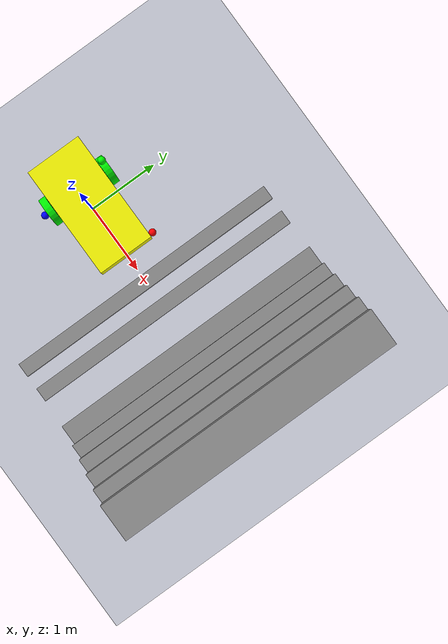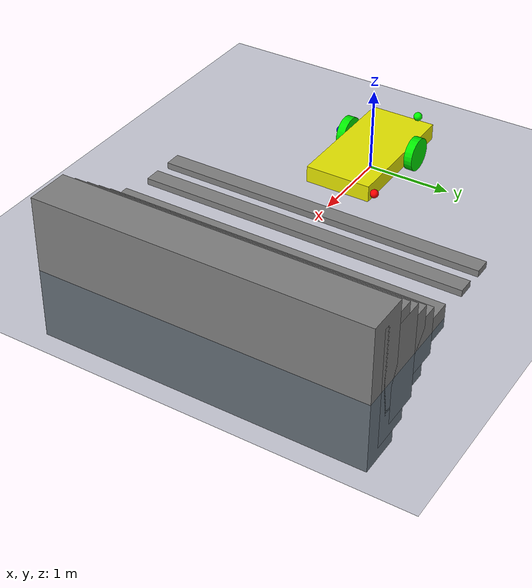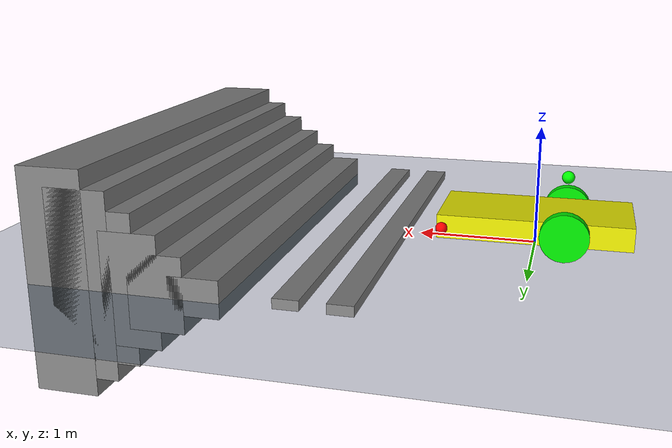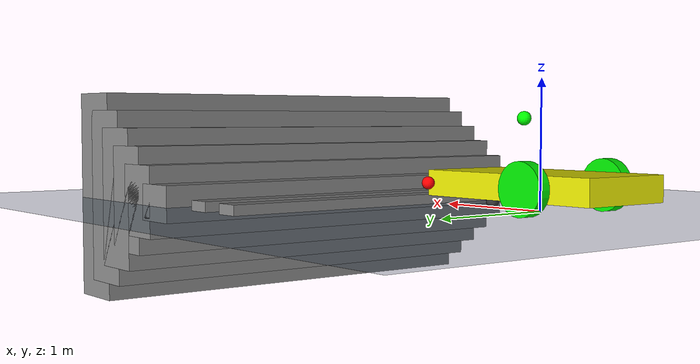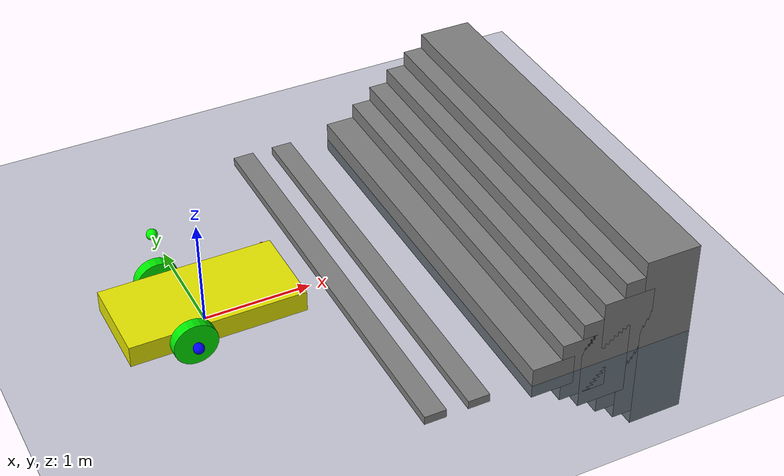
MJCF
<mujoco model="go2 scene">
  <include file="2wheel_robot.xml"/>

  <statistic center="0 0 0.1" extent="0.8"/>

  <visual>
    <headlight diffuse="0.6 0.6 0.6" ambient="0.3 0.3 0.3" specular="0 0 0"/>
    <rgba haze="0.15 0.25 0.35 1"/>
    <global azimuth="-130" elevation="-20"/>
  </visual>

  <asset>
    <texture type="skybox" builtin="gradient" rgb1="0.3 0.5 0.7" rgb2="0 0 0" width="512" height="3072"/>
    <texture type="2d" name="groundplane" builtin="checker" mark="edge" rgb1="0.2 0.3 0.4" rgb2="0.1 0.2 0.3"
      markrgb="0.8 0.8 0.8" width="300" height="300"/>
    <material name="groundplane" texture="groundplane" texuniform="true" texrepeat="5 5" reflectance="0.2"/>
  </asset>

  <worldbody>
    <light pos="0 0 1.5" dir="0 0 -1" directional="true"/>
    <geom name="floor" size="0 0 0.05" type="plane" material="groundplane"  friction="2 1.0 1.0"/>

    <geom pos="1.2 0 0.04" type="box"  size="0.1 2 0.04" quat="1.0 0 0 0"/>
    <geom pos="1.6 0 0.04" type="box"  size="0.1 2 0.04" quat="1.0 0 0 0"/>

    <geom pos="2.3 0 0.02" type="box"  size="0.2 2 0.15" quat="1.0 0 0 0"/>
    <geom pos="2.6 0 0.02" type="box"  size="0.22 2 0.3" quat="1.0 0 0 0"/>
    <geom pos="2.8 0 0.02" type="box"  size="0.23 2 0.45" quat="1.0 0 0 0"/>
    <geom pos="3 0 0.02" type="box"  size="0.24 2 0.6" quat="1.0 0 0 0"/>
    <geom pos="3.2 0 0.02" type="box"  size="0.25 2 0.75" quat="1.0 0 0 0"/>
    <geom pos="3.4 0 0.02" type="box"  size="0.26 2 0.9" quat="1.0 0 0 0"/>
  </worldbody>
</mujoco>

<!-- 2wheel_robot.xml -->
<mujoco>
    <option gravity="0 0 -9.81" />
    <visual>
        <headlight diffuse="0.6 0.6 0.6" ambient="0.3 0.3 0.3" specular="0 0 0"/>
        <rgba haze="0.15 0.25 0.35 1"/>
        <global azimuth="-130" elevation="-20"/>
    </visual>
    <worldbody>
        <light diffuse=".5 .5 .5" pos="0 0 3" dir="0 0 -1"/>
        <body name="chassis" pos="0 0 0.2">
            <joint type="free"/>
            <inertial pos="0 0 0" mass="1.0" diaginertia="0.0167 0.0567 0.0667"/>

            <geom type="box" size="0.8 0.4 0.1" rgba=".9 .9 0 1"/>
            <geom name="ballcast" type="sphere" size="0.05" pos="0.5 0 -0.15" rgba="0.2 0.2 0.2 1" contype="1" conaffinity="1"/>

            <body name="left-tire" pos="-0.25 0.45 0" euler='90 0 0'>
                <joint name="left-wheel" type="hinge" axis="0 0 -1"/>
                <inertial pos="0 0 0" mass="0.1" diaginertia="0.00106 0.00106 0.002"/>

                <geom type="cylinder" size=".2 0.05" friction="1 0.1 0.1" rgba="0 .9 0 1"/>
                <site name="x_axis" pos="1 0 0" size="0.05" rgba="1 0 0 1"/>
                <site name="y_axis" pos="0 0.5 0" size="0.05" rgba="0 1 0 1"/>
                <site name="z_axis" pos="0 0 1.0" size="0.05" rgba="0 0 1 1"/>
            </body>

            <body name="right-tire" pos="-0.25 -0.45 0" euler='90 0 0'>
                <joint name="right-wheel" type="hinge" axis="0 0 -1"/>
                <inertial pos="0 0 0" mass="0.1" diaginertia="0.00106 0.00106 0.002"/>

                <geom type="cylinder" size=".2 0.05" friction="1 0.1 0.1" rgba="0 .9 0 1"/>
            </body>
        </body>
    </worldbody>

    <sensor>
        <framepos objtype="geom" objname="ballcast"/>
    </sensor>

    <actuator>
        <velocity name="left-velocity-servo" joint="left-wheel" kv="10"  forcelimited="true" forcerange="-1.0 1.0"/>
        <velocity name="right-velocity-servo" joint="right-wheel" kv="10" forcelimited="true" forcerange="-1.0 1.0"/>
    </actuator>
</mujoco>
